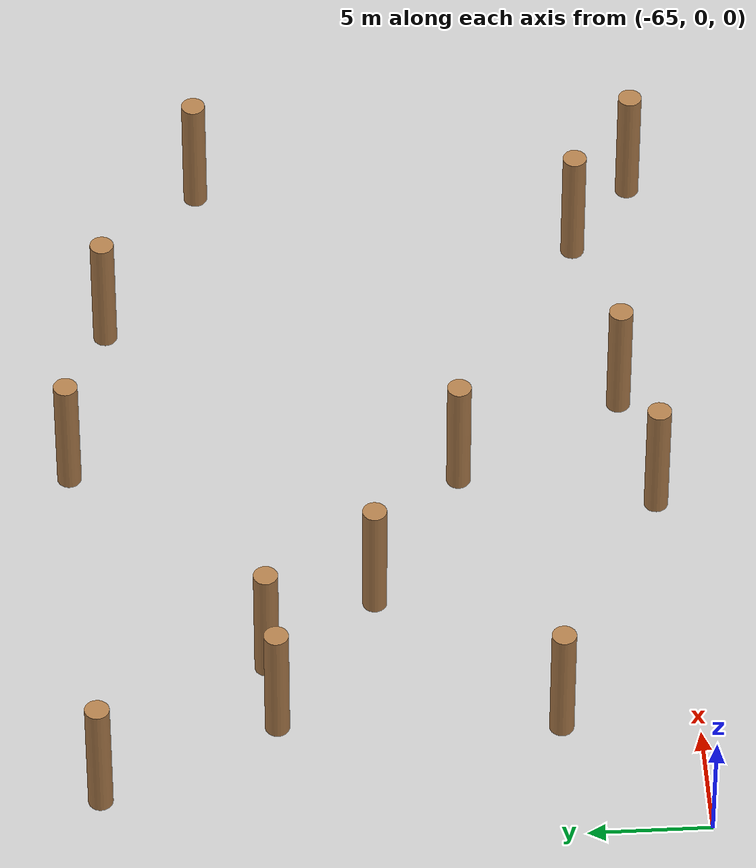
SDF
<sdf version="1.6">
 <world name="default">
  <model name="ground_plane">
   <static>1</static>
   <link name="link">
    <collision name="collision">
     <geometry><plane><normal>0 0 1</normal><size>100 100</size></plane></geometry>
     <surface><friction><ode><mu>100</mu><mu2>50</mu2></ode></friction></surface>
    </collision>
    <visual name="visual">
     <cast_shadows>0</cast_shadows>
     <geometry><plane><normal>0 0 1</normal><size>100 100</size></plane></geometry>
     <material>
      <script><uri>file://media/materials/scripts/gazebo.material</uri><name>Gazebo/Grey</name></script>
     </material>
    </visual>
   </link>
  </model>
  <model name="WoodPillars_9">
   <link name="link_clone_13">
    <inertial>
     <mass>1</mass>
     <inertia><ixx>0.145833</ixx><ixy>0</ixy><ixz>0</ixz><iyy>0.145833</iyy><iyz>0</iyz><izz>0.125</izz></inertia>
    </inertial>
    <pose>32.2715 -23.3528 -3e-06 0 -0 -0.001289</pose>
    <visual name="visual">
     <geometry><cylinder><radius>0.5</radius><length>5.50507</length></cylinder></geometry>
     <material>
      <script><name>Gazebo/Wood</name><uri>file://media/materials/scripts/gazebo.material</uri></script>
      <shader type="pixel"/>
     </material>
    </visual>
    <collision name="collision">
     <geometry><cylinder><radius>0.5</radius><length>5.50507</length></cylinder></geometry>
     <surface>
      <friction>
       <ode><mu>1</mu><mu2>1</mu2><fdir1>0 0 0</fdir1><slip1>0</slip1><slip2>0</slip2></ode>
       <torsional>
        <coefficient>1</coefficient>
        <patch_radius>0</patch_radius>
        <surface_radius>0</surface_radius>
        <use_patch_radius>1</use_patch_radius>
        <ode><slip>0</slip></ode>
       </torsional>
      </friction>
      <bounce><restitution_coefficient>0</restitution_coefficient><threshold>1e+06</threshold></bounce>
      <contact>
       <collide_without_contact>0</collide_without_contact>
       <collide_without_contact_bitmask>1</collide_without_contact_bitmask>
       <collide_bitmask>1</collide_bitmask>
       <ode>
        <soft_cfm>0</soft_cfm>
        <soft_erp>0.2</soft_erp>
        <kp>1e+13</kp>
        <kd>1</kd>
        <max_vel>0.01</max_vel>
        <min_depth>0</min_depth>
       </ode>
       <bullet>
        <split_impulse>1</split_impulse>
        <split_impulse_penetration_threshold>-0.01</split_impulse_penetration_threshold>
        <soft_cfm>0</soft_cfm>
        <soft_erp>0.2</soft_erp>
        <kp>1e+13</kp>
        <kd>1</kd>
       </bullet>
      </contact>
     </surface>
    </collision>
   </link>
   <link name="link_clone_16">
    <inertial>
     <mass>1</mass>
     <inertia><ixx>0.145833</ixx><ixy>0</ixy><ixz>0</ixz><iyy>0.145833</iyy><iyz>0</iyz><izz>0.125</izz></inertia>
    </inertial>
    <pose>32.9662 -11.9429 -3e-06 0 -0 -0.001289</pose>
    <visual name="visual">
     <geometry><cylinder><radius>0.5</radius><length>5.50507</length></cylinder></geometry>
     <material>
      <script><name>Gazebo/Wood</name><uri>file://media/materials/scripts/gazebo.material</uri></script>
      <shader type="pixel"/>
     </material>
    </visual>
    <collision name="collision">
     <geometry><cylinder><radius>0.5</radius><length>5.50507</length></cylinder></geometry>
     <surface>
      <friction>
       <ode><mu>1</mu><mu2>1</mu2><fdir1>0 0 0</fdir1><slip1>0</slip1><slip2>0</slip2></ode>
       <torsional>
        <coefficient>1</coefficient>
        <patch_radius>0</patch_radius>
        <surface_radius>0</surface_radius>
        <use_patch_radius>1</use_patch_radius>
        <ode><slip>0</slip></ode>
       </torsional>
      </friction>
      <bounce><restitution_coefficient>0</restitution_coefficient><threshold>1e+06</threshold></bounce>
      <contact>
       <collide_without_contact>0</collide_without_contact>
       <collide_without_contact_bitmask>1</collide_without_contact_bitmask>
       <collide_bitmask>1</collide_bitmask>
       <ode>
        <soft_cfm>0</soft_cfm>
        <soft_erp>0.2</soft_erp>
        <kp>1e+13</kp>
        <kd>1</kd>
        <max_vel>0.01</max_vel>
        <min_depth>0</min_depth>
       </ode>
       <bullet>
        <split_impulse>1</split_impulse>
        <split_impulse_penetration_threshold>-0.01</split_impulse_penetration_threshold>
        <soft_cfm>0</soft_cfm>
        <soft_erp>0.2</soft_erp>
        <kp>1e+13</kp>
        <kd>1</kd>
       </bullet>
      </contact>
     </surface>
    </collision>
   </link>
   <link name="link_clone_23">
    <inertial>
     <mass>1</mass>
     <inertia><ixx>0.145833</ixx><ixy>0</ixy><ixz>0</ixz><iyy>0.145833</iyy><iyz>0</iyz><izz>0.125</izz></inertia>
    </inertial>
    <pose>29.5176 -4.71623 -3e-06 0 -0 -0.001289</pose>
    <visual name="visual">
     <geometry><cylinder><radius>0.5</radius><length>5.50507</length></cylinder></geometry>
     <material>
      <script><name>Gazebo/Wood</name><uri>file://media/materials/scripts/gazebo.material</uri></script>
      <shader type="pixel"/>
     </material>
    </visual>
    <collision name="collision">
     <geometry><cylinder><radius>0.5</radius><length>5.50507</length></cylinder></geometry>
     <surface>
      <friction>
       <ode><mu>1</mu><mu2>1</mu2><fdir1>0 0 0</fdir1><slip1>0</slip1><slip2>0</slip2></ode>
       <torsional>
        <coefficient>1</coefficient>
        <patch_radius>0</patch_radius>
        <surface_radius>0</surface_radius>
        <use_patch_radius>1</use_patch_radius>
        <ode><slip>0</slip></ode>
       </torsional>
      </friction>
      <bounce><restitution_coefficient>0</restitution_coefficient><threshold>1e+06</threshold></bounce>
      <contact>
       <collide_without_contact>0</collide_without_contact>
       <collide_without_contact_bitmask>1</collide_without_contact_bitmask>
       <collide_bitmask>1</collide_bitmask>
       <ode>
        <soft_cfm>0</soft_cfm>
        <soft_erp>0.2</soft_erp>
        <kp>1e+13</kp>
        <kd>1</kd>
        <max_vel>0.01</max_vel>
        <min_depth>0</min_depth>
       </ode>
       <bullet>
        <split_impulse>1</split_impulse>
        <split_impulse_penetration_threshold>-0.01</split_impulse_penetration_threshold>
        <soft_cfm>0</soft_cfm>
        <soft_erp>0.2</soft_erp>
        <kp>1e+13</kp>
        <kd>1</kd>
       </bullet>
      </contact>
     </surface>
    </collision>
   </link>
   <link name="link_clone_29">
    <inertial>
     <mass>1</mass>
     <inertia><ixx>0.145833</ixx><ixy>0</ixy><ixz>0</ixz><iyy>0.145833</iyy><iyz>0</iyz><izz>0.125</izz></inertia>
    </inertial>
    <pose>39.4401 -16.2696 -4e-06 0 -0 -0.001289</pose>
    <visual name="visual">
     <geometry><cylinder><radius>0.5</radius><length>5.50507</length></cylinder></geometry>
     <material>
      <script><name>Gazebo/Wood</name><uri>file://media/materials/scripts/gazebo.material</uri></script>
      <shader type="pixel"/>
     </material>
    </visual>
    <collision name="collision">
     <geometry><cylinder><radius>0.5</radius><length>5.50507</length></cylinder></geometry>
     <surface>
      <friction>
       <ode><mu>1</mu><mu2>1</mu2><fdir1>0 0 0</fdir1><slip1>0</slip1><slip2>0</slip2></ode>
       <torsional>
        <coefficient>1</coefficient>
        <patch_radius>0</patch_radius>
        <surface_radius>0</surface_radius>
        <use_patch_radius>1</use_patch_radius>
        <ode><slip>0</slip></ode>
       </torsional>
      </friction>
      <bounce><restitution_coefficient>0</restitution_coefficient><threshold>1e+06</threshold></bounce>
      <contact>
       <collide_without_contact>0</collide_without_contact>
       <collide_without_contact_bitmask>1</collide_without_contact_bitmask>
       <collide_bitmask>1</collide_bitmask>
       <ode>
        <soft_cfm>0</soft_cfm>
        <soft_erp>0.2</soft_erp>
        <kp>1e+13</kp>
        <kd>1</kd>
        <max_vel>0.01</max_vel>
        <min_depth>0</min_depth>
       </ode>
       <bullet>
        <split_impulse>1</split_impulse>
        <split_impulse_penetration_threshold>-0.01</split_impulse_penetration_threshold>
        <soft_cfm>0</soft_cfm>
        <soft_erp>0.2</soft_erp>
        <kp>1e+13</kp>
        <kd>1</kd>
       </bullet>
      </contact>
     </surface>
    </collision>
   </link>
   <link name="link_clone_6">
    <inertial>
     <mass>1</mass>
     <inertia><ixx>0.145833</ixx><ixy>0</ixy><ixz>0</ixz><iyy>0.145833</iyy><iyz>0</iyz><izz>0.125</izz></inertia>
    </inertial>
    <pose>36.2258 -11.6926 -3e-06 0 -0 -0.001289</pose>
    <visual name="visual">
     <geometry><cylinder><radius>0.5</radius><length>5.50507</length></cylinder></geometry>
     <material>
      <script><name>Gazebo/Wood</name><uri>file://media/materials/scripts/gazebo.material</uri></script>
      <shader type="pixel"/>
     </material>
    </visual>
    <collision name="collision">
     <geometry><cylinder><radius>0.5</radius><length>5.50507</length></cylinder></geometry>
     <surface>
      <friction>
       <ode><mu>1</mu><mu2>1</mu2><fdir1>0 0 0</fdir1><slip1>0</slip1><slip2>0</slip2></ode>
       <torsional>
        <coefficient>1</coefficient>
        <patch_radius>0</patch_radius>
        <surface_radius>0</surface_radius>
        <use_patch_radius>1</use_patch_radius>
        <ode><slip>0</slip></ode>
       </torsional>
      </friction>
      <bounce><restitution_coefficient>0</restitution_coefficient><threshold>1e+06</threshold></bounce>
      <contact>
       <collide_without_contact>0</collide_without_contact>
       <collide_without_contact_bitmask>1</collide_without_contact_bitmask>
       <collide_bitmask>1</collide_bitmask>
       <ode>
        <soft_cfm>0</soft_cfm>
        <soft_erp>0.2</soft_erp>
        <kp>1e+13</kp>
        <kd>1</kd>
        <max_vel>0.01</max_vel>
        <min_depth>0</min_depth>
       </ode>
       <bullet>
        <split_impulse>1</split_impulse>
        <split_impulse_penetration_threshold>-0.01</split_impulse_penetration_threshold>
        <soft_cfm>0</soft_cfm>
        <soft_erp>0.2</soft_erp>
        <kp>1e+13</kp>
        <kd>1</kd>
       </bullet>
      </contact>
     </surface>
    </collision>
   </link>
   <static>0</static>
   <pose>-91.6289 28.871 2.75253 0 -0 0.001496</pose>
  </model>
  <model name="WoodPillars_13">
   <link name="link_clone_10">
    <inertial>
     <mass>1</mass>
     <inertia><ixx>0.145833</ixx><ixy>0</ixy><ixz>0</ixz><iyy>0.145833</iyy><iyz>0</iyz><izz>0.125</izz></inertia>
    </inertial>
    <pose>2.50237 12.8939 0 0 -0 -0.001289</pose>
    <visual name="visual">
     <geometry><cylinder><radius>0.5</radius><length>5.50507</length></cylinder></geometry>
     <material>
      <script><name>Gazebo/Wood</name><uri>file://media/materials/scripts/gazebo.material</uri></script>
      <shader type="pixel"/>
     </material>
    </visual>
    <collision name="collision">
     <geometry><cylinder><radius>0.5</radius><length>5.50507</length></cylinder></geometry>
     <surface>
      <friction>
       <ode><mu>1</mu><mu2>1</mu2><fdir1>0 0 0</fdir1><slip1>0</slip1><slip2>0</slip2></ode>
       <torsional>
        <coefficient>1</coefficient>
        <patch_radius>0</patch_radius>
        <surface_radius>0</surface_radius>
        <use_patch_radius>1</use_patch_radius>
        <ode><slip>0</slip></ode>
       </torsional>
      </friction>
      <bounce><restitution_coefficient>0</restitution_coefficient><threshold>1e+06</threshold></bounce>
      <contact>
       <collide_without_contact>0</collide_without_contact>
       <collide_without_contact_bitmask>1</collide_without_contact_bitmask>
       <collide_bitmask>1</collide_bitmask>
       <ode>
        <soft_cfm>0</soft_cfm>
        <soft_erp>0.2</soft_erp>
        <kp>1e+13</kp>
        <kd>1</kd>
        <max_vel>0.01</max_vel>
        <min_depth>0</min_depth>
       </ode>
       <bullet>
        <split_impulse>1</split_impulse>
        <split_impulse_penetration_threshold>-0.01</split_impulse_penetration_threshold>
        <soft_cfm>0</soft_cfm>
        <soft_erp>0.2</soft_erp>
        <kp>1e+13</kp>
        <kd>1</kd>
       </bullet>
      </contact>
     </surface>
    </collision>
   </link>
   <link name="link_clone_19">
    <inertial>
     <mass>1</mass>
     <inertia><ixx>0.145833</ixx><ixy>0</ixy><ixz>0</ixz><iyy>0.145833</iyy><iyz>0</iyz><izz>0.125</izz></inertia>
    </inertial>
    <pose>-3.28611 11.8265 -0 0 -0 -0.001289</pose>
    <visual name="visual">
     <geometry><cylinder><radius>0.5</radius><length>5.50507</length></cylinder></geometry>
     <material>
      <script><name>Gazebo/Wood</name><uri>file://media/materials/scripts/gazebo.material</uri></script>
      <shader type="pixel"/>
     </material>
    </visual>
    <collision name="collision">
     <geometry><cylinder><radius>0.5</radius><length>5.50507</length></cylinder></geometry>
     <surface>
      <friction>
       <ode><mu>1</mu><mu2>1</mu2><fdir1>0 0 0</fdir1><slip1>0</slip1><slip2>0</slip2></ode>
       <torsional>
        <coefficient>1</coefficient>
        <patch_radius>0</patch_radius>
        <surface_radius>0</surface_radius>
        <use_patch_radius>1</use_patch_radius>
        <ode><slip>0</slip></ode>
       </torsional>
      </friction>
      <bounce><restitution_coefficient>0</restitution_coefficient><threshold>1e+06</threshold></bounce>
      <contact>
       <collide_without_contact>0</collide_without_contact>
       <collide_without_contact_bitmask>1</collide_without_contact_bitmask>
       <collide_bitmask>1</collide_bitmask>
       <ode>
        <soft_cfm>0</soft_cfm>
        <soft_erp>0.2</soft_erp>
        <kp>1e+13</kp>
        <kd>1</kd>
        <max_vel>0.01</max_vel>
        <min_depth>0</min_depth>
       </ode>
       <bullet>
        <split_impulse>1</split_impulse>
        <split_impulse_penetration_threshold>-0.01</split_impulse_penetration_threshold>
        <soft_cfm>0</soft_cfm>
        <soft_erp>0.2</soft_erp>
        <kp>1e+13</kp>
        <kd>1</kd>
       </bullet>
      </contact>
     </surface>
    </collision>
   </link>
   <link name="link_clone_21">
    <inertial>
     <mass>1</mass>
     <inertia><ixx>0.145833</ixx><ixy>0</ixy><ixz>0</ixz><iyy>0.145833</iyy><iyz>0</iyz><izz>0.125</izz></inertia>
    </inertial>
    <pose>15.2748 11.406 -1e-06 0 -0 -0.001289</pose>
    <visual name="visual">
     <geometry><cylinder><radius>0.5</radius><length>5.50507</length></cylinder></geometry>
     <material>
      <script><name>Gazebo/Wood</name><uri>file://media/materials/scripts/gazebo.material</uri></script>
      <shader type="pixel"/>
     </material>
    </visual>
    <collision name="collision">
     <geometry><cylinder><radius>0.5</radius><length>5.50507</length></cylinder></geometry>
     <surface>
      <friction>
       <ode><mu>1</mu><mu2>1</mu2><fdir1>0 0 0</fdir1><slip1>0</slip1><slip2>0</slip2></ode>
       <torsional>
        <coefficient>1</coefficient>
        <patch_radius>0</patch_radius>
        <surface_radius>0</surface_radius>
        <use_patch_radius>1</use_patch_radius>
        <ode><slip>0</slip></ode>
       </torsional>
      </friction>
      <bounce><restitution_coefficient>0</restitution_coefficient><threshold>1e+06</threshold></bounce>
      <contact>
       <collide_without_contact>0</collide_without_contact>
       <collide_without_contact_bitmask>1</collide_without_contact_bitmask>
       <collide_bitmask>1</collide_bitmask>
       <ode>
        <soft_cfm>0</soft_cfm>
        <soft_erp>0.2</soft_erp>
        <kp>1e+13</kp>
        <kd>1</kd>
        <max_vel>0.01</max_vel>
        <min_depth>0</min_depth>
       </ode>
       <bullet>
        <split_impulse>1</split_impulse>
        <split_impulse_penetration_threshold>-0.01</split_impulse_penetration_threshold>
        <soft_cfm>0</soft_cfm>
        <soft_erp>0.2</soft_erp>
        <kp>1e+13</kp>
        <kd>1</kd>
       </bullet>
      </contact>
     </surface>
    </collision>
   </link>
   <link name="link_clone_25">
    <inertial>
     <mass>1</mass>
     <inertia><ixx>0.145833</ixx><ixy>0</ixy><ixz>0</ixz><iyy>0.145833</iyy><iyz>0</iyz><izz>0.125</izz></inertia>
    </inertial>
    <pose>11.7271 14.0632 -1e-06 0 -0 -0.001289</pose>
    <visual name="visual">
     <geometry><cylinder><radius>0.5</radius><length>5.50507</length></cylinder></geometry>
     <material>
      <script><name>Gazebo/Wood</name><uri>file://media/materials/scripts/gazebo.material</uri></script>
      <shader type="pixel"/>
     </material>
    </visual>
    <collision name="collision">
     <geometry><cylinder><radius>0.5</radius><length>5.50507</length></cylinder></geometry>
     <surface>
      <friction>
       <ode><mu>1</mu><mu2>1</mu2><fdir1>0 0 0</fdir1><slip1>0</slip1><slip2>0</slip2></ode>
       <torsional>
        <coefficient>1</coefficient>
        <patch_radius>0</patch_radius>
        <surface_radius>0</surface_radius>
        <use_patch_radius>1</use_patch_radius>
        <ode><slip>0</slip></ode>
       </torsional>
      </friction>
      <bounce><restitution_coefficient>0</restitution_coefficient><threshold>1e+06</threshold></bounce>
      <contact>
       <collide_without_contact>0</collide_without_contact>
       <collide_without_contact_bitmask>1</collide_without_contact_bitmask>
       <collide_bitmask>1</collide_bitmask>
       <ode>
        <soft_cfm>0</soft_cfm>
        <soft_erp>0.2</soft_erp>
        <kp>1e+13</kp>
        <kd>1</kd>
        <max_vel>0.01</max_vel>
        <min_depth>0</min_depth>
       </ode>
       <bullet>
        <split_impulse>1</split_impulse>
        <split_impulse_penetration_threshold>-0.01</split_impulse_penetration_threshold>
        <soft_cfm>0</soft_cfm>
        <soft_erp>0.2</soft_erp>
        <kp>1e+13</kp>
        <kd>1</kd>
       </bullet>
      </contact>
     </surface>
    </collision>
   </link>
   <link name="link_clone_31">
    <inertial>
     <mass>1</mass>
     <inertia><ixx>0.145833</ixx><ixy>0</ixy><ixz>0</ixz><iyy>0.145833</iyy><iyz>0</iyz><izz>0.125</izz></inertia>
    </inertial>
    <pose>-1.44135 19.9016 0 0 -0 -0.001289</pose>
    <visual name="visual">
     <geometry><cylinder><radius>0.5</radius><length>5.50507</length></cylinder></geometry>
     <material>
      <script><name>Gazebo/Wood</name><uri>file://media/materials/scripts/gazebo.material</uri></script>
      <shader type="pixel"/>
     </material>
    </visual>
    <collision name="collision">
     <geometry><cylinder><radius>0.5</radius><length>5.50507</length></cylinder></geometry>
     <surface>
      <friction>
       <ode><mu>1</mu><mu2>1</mu2><fdir1>0 0 0</fdir1><slip1>0</slip1><slip2>0</slip2></ode>
       <torsional>
        <coefficient>1</coefficient>
        <patch_radius>0</patch_radius>
        <surface_radius>0</surface_radius>
        <use_patch_radius>1</use_patch_radius>
        <ode><slip>0</slip></ode>
       </torsional>
      </friction>
      <bounce><restitution_coefficient>0</restitution_coefficient><threshold>1e+06</threshold></bounce>
      <contact>
       <collide_without_contact>0</collide_without_contact>
       <collide_without_contact_bitmask>1</collide_without_contact_bitmask>
       <collide_bitmask>1</collide_bitmask>
       <ode>
        <soft_cfm>0</soft_cfm>
        <soft_erp>0.2</soft_erp>
        <kp>1e+13</kp>
        <kd>1</kd>
        <max_vel>0.01</max_vel>
        <min_depth>0</min_depth>
       </ode>
       <bullet>
        <split_impulse>1</split_impulse>
        <split_impulse_penetration_threshold>-0.01</split_impulse_penetration_threshold>
        <soft_cfm>0</soft_cfm>
        <soft_erp>0.2</soft_erp>
        <kp>1e+13</kp>
        <kd>1</kd>
       </bullet>
      </contact>
     </surface>
    </collision>
   </link>
   <static>0</static>
   <pose>-43.9989 -11.1335 2.75253 0 -0 0.001424</pose>
  </model>
  <model name="WoodPillar_3">
   <link name="link">
    <inertial>
     <mass>1</mass>
     <inertia><ixx>0.145833</ixx><ixy>0</ixy><ixz>0</ixz><iyy>0.145833</iyy><iyz>0</iyz><izz>0.125</izz></inertia>
    </inertial>
    <visual name="visual">
     <geometry><cylinder><radius>0.5</radius><length>5.50507</length></cylinder></geometry>
     <material>
      <script><name>Gazebo/Wood</name><uri>file://media/materials/scripts/gazebo.material</uri></script>
     </material>
    </visual>
    <collision name="collision">
     <geometry><cylinder><radius>0.5</radius><length>5.50507</length></cylinder></geometry>
     <surface>
      <friction>
       <ode><mu>1</mu><mu2>1</mu2><fdir1>0 0 0</fdir1><slip1>0</slip1><slip2>0</slip2></ode>
       <torsional>
        <coefficient>1</coefficient>
        <patch_radius>0</patch_radius>
        <surface_radius>0</surface_radius>
        <use_patch_radius>1</use_patch_radius>
        <ode><slip>0</slip></ode>
       </torsional>
      </friction>
      <bounce><restitution_coefficient>0</restitution_coefficient><threshold>1e+06</threshold></bounce>
      <contact>
       <collide_without_contact>0</collide_without_contact>
       <collide_without_contact_bitmask>1</collide_without_contact_bitmask>
       <collide_bitmask>1</collide_bitmask>
       <ode>
        <soft_cfm>0</soft_cfm>
        <soft_erp>0.2</soft_erp>
        <kp>1e+13</kp>
        <kd>1</kd>
        <max_vel>0.01</max_vel>
        <min_depth>0</min_depth>
       </ode>
       <bullet>
        <split_impulse>1</split_impulse>
        <split_impulse_penetration_threshold>-0.01</split_impulse_penetration_threshold>
        <soft_cfm>0</soft_cfm>
        <soft_erp>0.2</soft_erp>
        <kp>1e+13</kp>
        <kd>1</kd>
       </bullet>
      </contact>
     </surface>
    </collision>
   </link>
   <static>0</static>
   <pose>-36.2735 23.1255 2.75253 0 -0 0.001312</pose>
  </model>
  <model name="WoodPillar_6">
   <link name="link">
    <inertial>
     <mass>1</mass>
     <inertia><ixx>0.145833</ixx><ixy>0</ixy><ixz>0</ixz><iyy>0.145833</iyy><iyz>0</iyz><izz>0.125</izz></inertia>
    </inertial>
    <visual name="visual">
     <geometry><cylinder><radius>0.5</radius><length>5.50507</length></cylinder></geometry>
     <material>
      <script><name>Gazebo/Wood</name><uri>file://media/materials/scripts/gazebo.material</uri></script>
     </material>
    </visual>
    <collision name="collision">
     <geometry><cylinder><radius>0.5</radius><length>5.50507</length></cylinder></geometry>
     <surface>
      <friction>
       <ode><mu>1</mu><mu2>1</mu2><fdir1>0 0 0</fdir1><slip1>0</slip1><slip2>0</slip2></ode>
       <torsional>
        <coefficient>1</coefficient>
        <patch_radius>0</patch_radius>
        <surface_radius>0</surface_radius>
        <use_patch_radius>1</use_patch_radius>
        <ode><slip>0</slip></ode>
       </torsional>
      </friction>
      <bounce><restitution_coefficient>0</restitution_coefficient><threshold>1e+06</threshold></bounce>
      <contact>
       <collide_without_contact>0</collide_without_contact>
       <collide_without_contact_bitmask>1</collide_without_contact_bitmask>
       <collide_bitmask>1</collide_bitmask>
       <ode>
        <soft_cfm>0</soft_cfm>
        <soft_erp>0.2</soft_erp>
        <kp>1e+13</kp>
        <kd>1</kd>
        <max_vel>0.01</max_vel>
        <min_depth>0</min_depth>
       </ode>
       <bullet>
        <split_impulse>1</split_impulse>
        <split_impulse_penetration_threshold>-0.01</split_impulse_penetration_threshold>
        <soft_cfm>0</soft_cfm>
        <soft_erp>0.2</soft_erp>
        <kp>1e+13</kp>
        <kd>1</kd>
       </bullet>
      </contact>
     </surface>
    </collision>
   </link>
   <static>0</static>
   <pose>-44.4215 24.8978 2.75253 0 -0 0.001305</pose>
  </model>
  <model name="WoodPillar_7">
   <link name="link">
    <inertial>
     <mass>1</mass>
     <inertia><ixx>0.145833</ixx><ixy>0</ixy><ixz>0</ixz><iyy>0.145833</iyy><iyz>0</iyz><izz>0.125</izz></inertia>
    </inertial>
    <visual name="visual">
     <geometry><cylinder><radius>0.5</radius><length>5.50507</length></cylinder></geometry>
     <material>
      <script><name>Gazebo/Wood</name><uri>file://media/materials/scripts/gazebo.material</uri></script>
     </material>
    </visual>
    <collision name="collision">
     <geometry><cylinder><radius>0.5</radius><length>5.50507</length></cylinder></geometry>
     <surface>
      <friction>
       <ode><mu>1</mu><mu2>1</mu2><fdir1>0 0 0</fdir1><slip1>0</slip1><slip2>0</slip2></ode>
       <torsional>
        <coefficient>1</coefficient>
        <patch_radius>0</patch_radius>
        <surface_radius>0</surface_radius>
        <use_patch_radius>1</use_patch_radius>
        <ode><slip>0</slip></ode>
       </torsional>
      </friction>
      <bounce><restitution_coefficient>0</restitution_coefficient><threshold>1e+06</threshold></bounce>
      <contact>
       <collide_without_contact>0</collide_without_contact>
       <collide_without_contact_bitmask>1</collide_without_contact_bitmask>
       <collide_bitmask>1</collide_bitmask>
       <ode>
        <soft_cfm>0</soft_cfm>
        <soft_erp>0.2</soft_erp>
        <kp>1e+13</kp>
        <kd>1</kd>
        <max_vel>0.01</max_vel>
        <min_depth>0</min_depth>
       </ode>
       <bullet>
        <split_impulse>1</split_impulse>
        <split_impulse_penetration_threshold>-0.01</split_impulse_penetration_threshold>
        <soft_cfm>0</soft_cfm>
        <soft_erp>0.2</soft_erp>
        <kp>1e+13</kp>
        <kd>1</kd>
       </bullet>
      </contact>
     </surface>
    </collision>
   </link>
   <static>0</static>
   <pose>-28.1023 18.9463 2.75253 0 -0 0.001321</pose>
  </model>
 </world>
</sdf>
